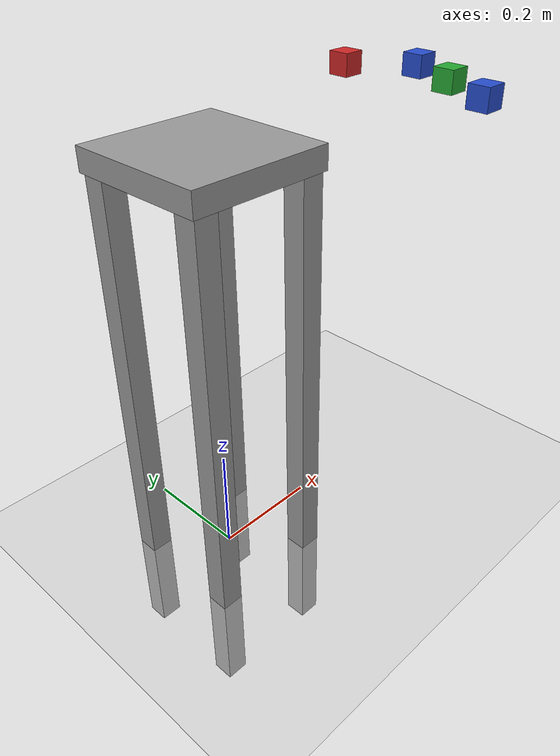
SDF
<sdf version="1.6">
 <world name="default">
  <gravity>0 0 -9.81</gravity>
  <physics name="default_physics" default="0" type="ode">
   <max_step_size>0.001</max_step_size>
   <real_time_factor>1</real_time_factor>
   <real_time_update_rate>1000</real_time_update_rate>
  </physics>
  <scene><ambient>0.4 0.4 0.4 1</ambient><background>0.7 0.7 0.7 1</background><shadows>1</shadows></scene>
  <include><uri>model://sun</uri></include>
  <include><uri>model://ground_plane</uri></include>
  <model name="arm_base">
   <static>true</static>
   <link name="top_plate">
    <pose>0 0 0.755 0 0 0</pose>
    <collision name="top_plate_collision">
     <geometry><box><size>0.25 0.25 0.04</size></box></geometry>
     <surface><contact><collide_bitmask>0x01</collide_bitmask></contact></surface>
    </collision>
    <visual name="top_plate_visual">
     <geometry><box><size>0.25 0.25 0.04</size></box></geometry>
     <material>
      <script><uri>file://media/materials/scripts/gazebo.material</uri><name>Gazebo/Grey</name></script>
     </material>
    </visual>
   </link>
   <link name="leg1">
    <pose>0.1 0.1 0.285 0 0 0</pose>
    <collision name="leg1_collision"><geometry><box><size>0.04 0.04 0.965</size></box></geometry></collision>
    <visual name="leg1_visual">
     <geometry><box><size>0.04 0.04 0.965</size></box></geometry>
     <material>
      <script><uri>file://media/materials/scripts/gazebo.material</uri><name>Gazebo/Grey</name></script>
     </material>
    </visual>
   </link>
   <link name="leg2">
    <pose>-0.1 0.1 0.285 0 0 0</pose>
    <collision name="leg2_collision"><geometry><box><size>0.04 0.04 0.965</size></box></geometry></collision>
    <visual name="leg2_visual">
     <geometry><box><size>0.04 0.04 0.965</size></box></geometry>
     <material>
      <script><uri>file://media/materials/scripts/gazebo.material</uri><name>Gazebo/Grey</name></script>
     </material>
    </visual>
   </link>
   <link name="leg3">
    <pose>0.1 -0.1 0.285 0 0 0</pose>
    <collision name="leg3_collision"><geometry><box><size>0.04 0.04 0.965</size></box></geometry></collision>
    <visual name="leg3_visual">
     <geometry><box><size>0.04 0.04 0.965</size></box></geometry>
     <material>
      <script><uri>file://media/materials/scripts/gazebo.material</uri><name>Gazebo/Grey</name></script>
     </material>
    </visual>
   </link>
   <link name="leg4">
    <pose>-0.1 -0.1 0.285 0 0 0</pose>
    <collision name="leg4_collision"><geometry><box><size>0.04 0.04 0.965</size></box></geometry></collision>
    <visual name="leg4_visual">
     <geometry><box><size>0.04 0.04 0.965</size></box></geometry>
     <material>
      <script><uri>file://media/materials/scripts/gazebo.material</uri><name>Gazebo/Grey</name></script>
     </material>
    </visual>
   </link>
  </model>
  <model name="box1">
   <pose>0.45 -0.1 0.775 0 0 0</pose>
   <link name="link">
    <pose>0 0 0.025 0 0 0</pose>
    <inertial>
     <mass>0.0565</mass>
     <inertia>
      <ixx>2.3541666666666672e-05</ixx>
      <ixy>0</ixy>
      <ixz>0</ixz>
      <iyy>2.3541666666666672e-05</iyy>
      <iyz>0</iyz>
      <izz>2.3541666666666672e-05</izz>
     </inertia>
    </inertial>
    <collision name="collision">
     <geometry><box><size>0.04 0.04 0.04</size></box></geometry>
     <surface>
      <contact>
       <poissons_ratio>0.347</poissons_ratio>
       <elastic_modulus>8.8e+09</elastic_modulus>
       <ode><kp>100000</kp><kd>1</kd><max_vel>1.0</max_vel><min_depth>0.001</min_depth></ode>
      </contact>
      <friction>
       <torsional>
        <coefficient>1.0</coefficient>
        <use_patch_radius>0</use_patch_radius>
        <surface_radius>0.05</surface_radius>
       </torsional>
      </friction>
     </surface>
    </collision>
    <visual name="visual">
     <geometry><box><size>0.04 0.04 0.04</size></box></geometry>
     <material>
      <script><uri>file://media/materials/scripts/gazebo.material</uri><name>Gazebo/Green</name></script>
     </material>
    </visual>
   </link>
  </model>
  <model name="box2">
   <pose>0.42 0.1 0.775 0 0 0</pose>
   <link name="link">
    <pose>0 0 0.025 0 0 0</pose>
    <inertial>
     <mass>0.0565</mass>
     <inertia>
      <ixx>2.3541666666666672e-05</ixx>
      <ixy>0</ixy>
      <ixz>0</ixz>
      <iyy>2.3541666666666672e-05</iyy>
      <iyz>0</iyz>
      <izz>2.3541666666666672e-05</izz>
     </inertia>
    </inertial>
    <collision name="collision">
     <geometry><box><size>0.04 0.04 0.04</size></box></geometry>
     <surface>
      <contact>
       <poissons_ratio>0.347</poissons_ratio>
       <elastic_modulus>8.8e+09</elastic_modulus>
       <ode><kp>100000</kp><kd>1</kd><max_vel>1.0</max_vel><min_depth>0.001</min_depth></ode>
      </contact>
      <friction>
       <torsional>
        <coefficient>1.0</coefficient>
        <use_patch_radius>0</use_patch_radius>
        <surface_radius>0.05</surface_radius>
       </torsional>
      </friction>
     </surface>
    </collision>
    <visual name="visual">
     <geometry><box><size>0.04 0.04 0.04</size></box></geometry>
     <material>
      <script><uri>file://media/materials/scripts/gazebo.material</uri><name>Gazebo/Red</name></script>
     </material>
    </visual>
   </link>
  </model>
  <model name="box3">
   <pose>0.40 -0.2 0.775 0 0 0</pose>
   <link name="link">
    <pose>0 0 0.025 0 0 0</pose>
    <inertial>
     <mass>0.0565</mass>
     <inertia>
      <ixx>2.3541666666666672e-05</ixx>
      <ixy>0</ixy>
      <ixz>0</ixz>
      <iyy>2.3541666666666672e-05</iyy>
      <iyz>0</iyz>
      <izz>2.3541666666666672e-05</izz>
     </inertia>
    </inertial>
    <collision name="collision">
     <geometry><box><size>0.04 0.04 0.04</size></box></geometry>
     <surface>
      <contact>
       <poissons_ratio>0.347</poissons_ratio>
       <elastic_modulus>8.8e+09</elastic_modulus>
       <ode><kp>100000</kp><kd>1</kd><max_vel>1.0</max_vel><min_depth>0.001</min_depth></ode>
      </contact>
      <friction>
       <torsional>
        <coefficient>1.0</coefficient>
        <use_patch_radius>0</use_patch_radius>
        <surface_radius>0.05</surface_radius>
       </torsional>
      </friction>
     </surface>
    </collision>
    <visual name="visual">
     <geometry><box><size>0.04 0.04 0.04</size></box></geometry>
     <material>
      <script><uri>file://media/materials/scripts/gazebo.material</uri><name>Gazebo/Blue</name></script>
     </material>
    </visual>
   </link>
  </model>
  <model name="box4">
   <pose>0.5 0 0.775 0 0 0</pose>
   <link name="link">
    <pose>0 0 0.025 0 0 0</pose>
    <inertial>
     <mass>0.0565</mass>
     <inertia>
      <ixx>2.3541666666666672e-05</ixx>
      <ixy>0</ixy>
      <ixz>0</ixz>
      <iyy>2.3541666666666672e-05</iyy>
      <iyz>0</iyz>
      <izz>2.3541666666666672e-05</izz>
     </inertia>
    </inertial>
    <collision name="collision">
     <geometry><box><size>0.04 0.04 0.04</size></box></geometry>
     <surface>
      <contact>
       <poissons_ratio>0.347</poissons_ratio>
       <elastic_modulus>8.8e+09</elastic_modulus>
       <ode><kp>100000</kp><kd>1</kd><max_vel>1.0</max_vel><min_depth>0.001</min_depth></ode>
      </contact>
      <friction>
       <torsional>
        <coefficient>1.0</coefficient>
        <use_patch_radius>0</use_patch_radius>
        <surface_radius>0.05</surface_radius>
       </torsional>
      </friction>
     </surface>
    </collision>
    <visual name="visual">
     <geometry><box><size>0.04 0.04 0.04</size></box></geometry>
     <material>
      <script><uri>file://media/materials/scripts/gazebo.material</uri><name>Gazebo/Blue</name></script>
     </material>
    </visual>
   </link>
  </model>
 </world>
</sdf>
